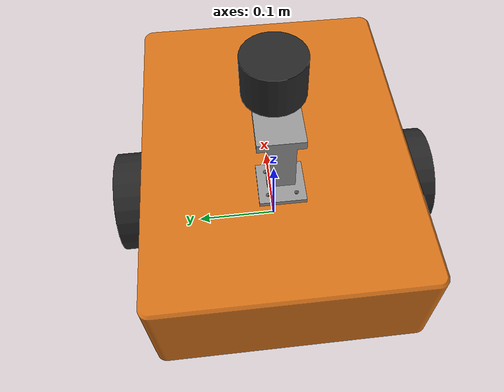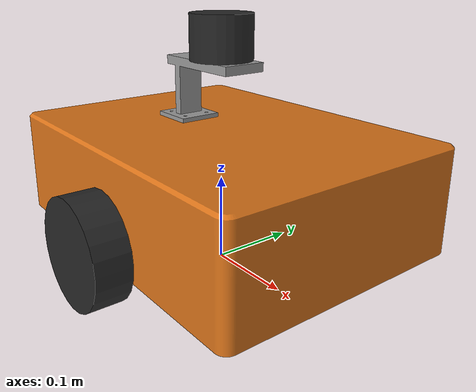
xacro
<?xml version="1.0"?>
<robot name="planguard" xmlns:xacro="http://www.ros.org/wiki/xacro">

  <!-- ===== Dimensions (single source of truth; keep cad/parts.py and shield.yaml in sync) ===== -->
  <xacro:property name="chassis_l" value="0.40"/>
  <xacro:property name="chassis_w" value="0.30"/>
  <xacro:property name="chassis_h" value="0.12"/>
  <xacro:property name="chassis_z" value="0.04"/>      <!-- chassis center above base_link -->
  <xacro:property name="chassis_mass" value="6.0"/>
  <xacro:property name="wheel_r" value="0.06"/>
  <xacro:property name="wheel_w" value="0.04"/>
  <xacro:property name="wheel_y" value="0.17"/>
  <xacro:property name="wheel_mass" value="0.4"/>
  <xacro:property name="caster_r" value="0.02"/>
  <xacro:property name="caster_x" value="0.15"/>
  <!-- casters sit 3 mm above the ground so the drive wheels always carry the load
       (four coplanar contacts are statically indeterminate and make the wheels slip) -->
  <xacro:property name="caster_z" value="${caster_r - wheel_r + 0.003}"/>
  <xacro:property name="lidar_z" value="0.20"/>        <!-- lidar optical center above base_link -->
  <xacro:property name="lidar_r" value="0.035"/>
  <xacro:property name="lidar_h" value="0.05"/>
  <xacro:property name="bracket_z" value="${chassis_z + chassis_h/2}"/>  <!-- chassis top -->
  <xacro:property name="mesh_scale" value="0.001 0.001 0.001"/>

  <xacro:macro name="box_inertia" params="m x y z">
    <inertia ixx="${m*(y*y+z*z)/12}" ixy="0" ixz="0" iyy="${m*(x*x+z*z)/12}" iyz="0" izz="${m*(x*x+y*y)/12}"/>
  </xacro:macro>
  <xacro:macro name="cyl_inertia" params="m r h">
    <inertia ixx="${m*(3*r*r+h*h)/12}" ixy="0" ixz="0" iyy="${m*(3*r*r+h*h)/12}" iyz="0" izz="${m*r*r/2}"/>
  </xacro:macro>

  <material name="body"><color rgba="0.85 0.45 0.10 1"/></material>
  <material name="dark"><color rgba="0.15 0.15 0.15 1"/></material>
  <material name="grey"><color rgba="0.6 0.6 0.6 1"/></material>

  <!-- base_footprint on the ground, base_link on the wheel axle -->
  <link name="base_footprint"/>
  <joint name="base_joint" type="fixed">
    <parent link="base_footprint"/>
    <child link="base_link"/>
    <origin xyz="0 0 ${wheel_r}"/>
  </joint>

  <link name="base_link">
    <visual>
      <origin xyz="0 0 ${chassis_z}"/>
      <geometry><mesh filename="package://planguard_description/meshes/chassis.stl" scale="${mesh_scale}"/></geometry>
      <material name="body"/>
    </visual>
    <collision name="chassis_collision">
      <origin xyz="0 0 ${chassis_z}"/>
      <geometry><box size="${chassis_l} ${chassis_w} ${chassis_h}"/></geometry>
    </collision>
    <inertial>
      <origin xyz="0 0 ${chassis_z}"/>
      <mass value="${chassis_mass}"/>
      <xacro:box_inertia m="${chassis_mass}" x="${chassis_l}" y="${chassis_w}" z="${chassis_h}"/>
    </inertial>
  </link>

  <xacro:macro name="drive_wheel" params="side y">
    <link name="${side}_wheel">
      <visual>
        <origin rpy="${-pi/2} 0 0"/>
        <geometry><cylinder radius="${wheel_r}" length="${wheel_w}"/></geometry>
        <material name="dark"/>
      </visual>
      <collision>
        <geometry><sphere radius="${wheel_r}"/></geometry>
      </collision>
      <inertial>
        <origin rpy="${-pi/2} 0 0"/>
        <mass value="${wheel_mass}"/>
        <xacro:cyl_inertia m="${wheel_mass}" r="${wheel_r}" h="${wheel_w}"/>
      </inertial>
    </link>
    <joint name="${side}_wheel_joint" type="continuous">
      <parent link="base_link"/>
      <child link="${side}_wheel"/>
      <origin xyz="0 ${y} 0"/>
      <axis xyz="0 1 0"/>
    </joint>
    <gazebo reference="${side}_wheel">
      <mu1>1.0</mu1><mu2>1.0</mu2>
    </gazebo>
  </xacro:macro>
  <xacro:drive_wheel side="left" y="${wheel_y}"/>
  <xacro:drive_wheel side="right" y="${-wheel_y}"/>

  <xacro:macro name="caster" params="name x">
    <link name="${name}_caster">
      <visual><geometry><sphere radius="${caster_r}"/></geometry><material name="grey"/></visual>
      <collision><geometry><sphere radius="${caster_r}"/></geometry></collision>
      <inertial>
        <mass value="0.05"/>
        <inertia ixx="1e-5" ixy="0" ixz="0" iyy="1e-5" iyz="0" izz="1e-5"/>
      </inertial>
    </link>
    <joint name="${name}_caster_joint" type="fixed">
      <parent link="base_link"/>
      <child link="${name}_caster"/>
      <origin xyz="${x} 0 ${caster_z}"/>
    </joint>
    <gazebo reference="${name}_caster">
      <mu1>0.0</mu1><mu2>0.0</mu2>
    </gazebo>
  </xacro:macro>
  <xacro:caster name="front" x="${caster_x}"/>
  <xacro:caster name="rear" x="${-caster_x}"/>

  <!-- L-shaped lidar bracket (custom CAD part) -->
  <link name="lidar_bracket">
    <visual>
      <geometry><mesh filename="package://planguard_description/meshes/lidar_bracket.stl" scale="${mesh_scale}"/></geometry>
      <material name="grey"/>
    </visual>
    <inertial>
      <origin xyz="-0.03 0 0.04"/>
      <mass value="0.1"/>
      <inertia ixx="1e-4" ixy="0" ixz="0" iyy="1e-4" iyz="0" izz="1e-4"/>
    </inertial>
  </link>
  <joint name="lidar_bracket_joint" type="fixed">
    <parent link="base_link"/>
    <child link="lidar_bracket"/>
    <origin xyz="0 0 ${bracket_z}"/>
  </joint>

  <link name="lidar_link">
    <visual>
      <geometry><cylinder radius="${lidar_r}" length="${lidar_h}"/></geometry>
      <material name="dark"/>
    </visual>
    <inertial>
      <mass value="0.1"/>
      <inertia ixx="1e-5" ixy="0" ixz="0" iyy="1e-5" iyz="0" izz="1e-5"/>
    </inertial>
  </link>
  <joint name="lidar_joint" type="fixed">
    <parent link="base_link"/>
    <child link="lidar_link"/>
    <origin xyz="0 0 ${lidar_z}"/>
  </joint>

  <!-- ===== Gazebo (Harmonic) plugins and sensors ===== -->
  <gazebo reference="lidar_link">
    <sensor name="lidar" type="gpu_lidar">
      <topic>scan</topic>
      <gz_frame_id>lidar_link</gz_frame_id>
      <update_rate>10</update_rate>
      <always_on>true</always_on>
      <visualize>false</visualize>
      <lidar>
        <scan>
          <horizontal><samples>360</samples><resolution>1</resolution>
            <min_angle>-3.14159265</min_angle><max_angle>3.14159265</max_angle></horizontal>
          <vertical><samples>1</samples><min_angle>0</min_angle><max_angle>0</max_angle></vertical>
        </scan>
        <range><min>0.12</min><max>8.0</max><resolution>0.01</resolution></range>
        <noise><type>gaussian</type><mean>0.0</mean><stddev>0.01</stddev></noise>
      </lidar>
    </sensor>
  </gazebo>

  <gazebo>
    <plugin filename="gz-sim-diff-drive-system" name="gz::sim::systems::DiffDrive">
      <left_joint>left_wheel_joint</left_joint>
      <right_joint>right_wheel_joint</right_joint>
      <wheel_separation>${2*wheel_y}</wheel_separation>
      <wheel_radius>${wheel_r}</wheel_radius>
      <max_linear_acceleration>1.0</max_linear_acceleration>
      <min_linear_acceleration>-1.0</min_linear_acceleration>
      <max_angular_acceleration>3.0</max_angular_acceleration>
      <min_angular_acceleration>-3.0</min_angular_acceleration>
      <max_linear_velocity>0.6</max_linear_velocity>
      <min_linear_velocity>-0.6</min_linear_velocity>
      <max_angular_velocity>2.0</max_angular_velocity>
      <min_angular_velocity>-2.0</min_angular_velocity>
      <topic>cmd_vel</topic>
      <odom_topic>odom</odom_topic>
      <odom_publish_frequency>30</odom_publish_frequency>
      <tf_topic>tf</tf_topic>
      <frame_id>odom</frame_id>
      <child_frame_id>base_footprint</child_frame_id>
    </plugin>
    <!-- Ground-truth pose for the evaluator only (never read by controller or shield) -->
    <plugin filename="gz-sim-odometry-publisher-system" name="gz::sim::systems::OdometryPublisher">
      <odom_frame>world</odom_frame>
      <robot_base_frame>base_footprint</robot_base_frame>
      <odom_topic>ground_truth/odom</odom_topic>
      <odom_publish_frequency>30</odom_publish_frequency>
      <dimensions>2</dimensions>
    </plugin>
    <plugin filename="gz-sim-joint-state-publisher-system" name="gz::sim::systems::JointStatePublisher">
      <topic>joint_states</topic>
    </plugin>
  </gazebo>
</robot>
